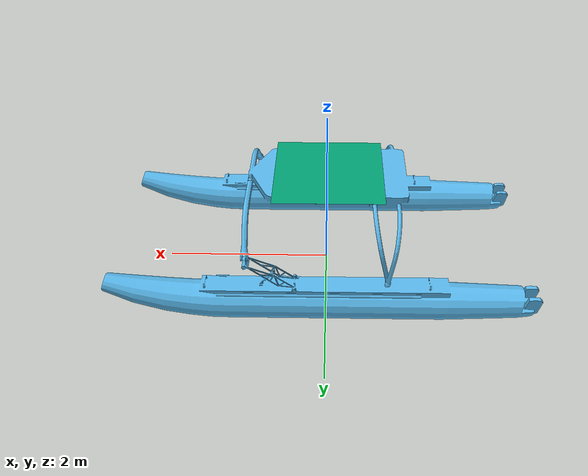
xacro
<?xml version="1.0"?>
<robot xmlns:xacro="http://ros.org/wiki/xacro" name="wam-v">
  <!-- Macro for creating the main collisions as simple shapes. -->
  <xacro:macro name="main_collisions" params="prefix reflect:=1">
    <!-- Main float -->
    <collision name="${prefix}_float">
      <origin xyz="-0.4 ${1.03*reflect} 0.2" rpy="${0*reflect} 1.57 0" />
      <geometry>
        <cylinder length="4" radius="0.2" />
      </geometry>
    </collision>

    <collision name="${prefix}_mid_float">
      <origin xyz="1.85 ${1.03*reflect} 0.3" rpy="${0*reflect} 1.38 0" />
      <geometry>
        <cylinder length="0.5" radius="0.17" />
      </geometry>
    </collision>
    <collision name="${prefix}_front_float">
      <origin xyz="2.3 ${1.03*reflect} 0.4" rpy="${0*reflect} 1.3 0" />
      <geometry>
        <cylinder length="0.45" radius="0.12" />
      </geometry>
    </collision>

    <!-- Front beam -->
    <collision name="front_${prefix}_beam_lower">
      <origin xyz="0.9 ${0.85*reflect} 1" rpy="${0.78*reflect} 0 0" />
      <geometry>
        <cylinder length="0.5" radius="0.04" />
      </geometry>
    </collision>

    <collision name="front_${prefix}_beam_upper">
      <origin xyz="0.9 ${0.6*reflect} 1.18" rpy="${1.35*reflect} 0 0" />
      <geometry>
        <cylinder length="0.2" radius="0.04" />
      </geometry>
    </collision>

    <!-- Mid beam -->
    <collision name="mid_${prefix}_beam_lower">
      <origin xyz="-0.65 ${0.99*reflect} 0.7" rpy="${0.1*reflect} 0.25 0" />
      <geometry>
        <cylinder length="0.45" radius="0.03" />
      </geometry>
    </collision>

    <collision name="mid_${prefix}_beam_medium">
      <origin xyz="-0.57 ${0.87*reflect} 1.05" rpy="${0.75*reflect} 0.25 0" />
      <geometry>
        <cylinder length="0.32" radius="0.03" />
      </geometry>
    </collision>

    <collision name="mid_${prefix}_beam_upper">
      <origin xyz="-0.55 ${0.65*reflect} 1.17" rpy="${1.35*reflect} 0.25 0" />
      <geometry>
        <cylinder length="0.3" radius="0.03" />
      </geometry>
    </collision>

    <!-- Rear beam -->
    <collision name="rear_${prefix}_beam_lower">
      <origin xyz="-0.74 ${1.03*reflect} 0.7" rpy="${0*reflect} -0.15 0" />
      <geometry>
        <cylinder length="0.45" radius="0.03" />
      </geometry>
    </collision>

    <collision name="rear_${prefix}_beam_medium">
      <origin xyz="-0.79 ${0.91*reflect} 1.05" rpy="${0.75*reflect} -0.15 0" />
      <geometry>
        <cylinder length="0.32" radius="0.03" />
      </geometry>
    </collision>

    <collision name="rear_${prefix}_beam_upper">
      <origin xyz="-0.81 ${0.67*reflect} 1.18" rpy="${1.45*reflect} -0.15 0" />
      <geometry>
        <cylinder length="0.3" radius="0.03" />
      </geometry>
    </collision>

    <!-- Joint -->
    <collision name="${prefix}_joint">
      <origin xyz="0.58 ${1.03*reflect} 0.6" rpy="${0*reflect} -0.6 0" />
      <geometry>
        <box size="0.65 0.2 0.1" />
      </geometry>
    </collision>
  </xacro:macro>

  <link name="base_link">
  </link>

  <joint name="dummy_joint" type = "fixed">
    <parent link="base_link"/>
    <child link="dummy_link"/>
  </joint>

  <!-- Basic model of the 16' WAM-V USV -->
  <link name="dummy_link">
    <visual>
      <geometry>
        <mesh filename="package://wamv_description/models/WAM-V-Base/mesh/WAM-V-Base.dae"/>
      </geometry>
    </visual>

    <!-- Left base collisions -->
    <xacro:main_collisions prefix="left" reflect="1" />

    <!-- Right side collisions -->
    <xacro:main_collisions prefix="right" reflect="-1" />

     <!-- Top base -->
    <collision name="top_base">
      <origin xyz="0 -0 1.25" rpy="0 0 0" />
      <geometry>
        <box size="1.85 1 0.1" />
      </geometry>
    </collision>

    <inertial>
      <!-- From WAM-V spec sheet -->
      <mass value="180.0"/>
      <inertia ixx="120.0" ixy="0.0" ixz="0.0" iyy="393" iyz="0.0" izz="446.0"/>
    </inertial>
  </link>

<!-- add mark label -->
  <joint name="mark_joint" type = "fixed">
    <parent link="dummy_link"/>
    <child link="mark_link"/>
  </joint>
  <link name='mark_link'>
    <visual>
      <origin xyz="-0.23 0.35 1.3" rpy="1.57 0 -1.57" />
      <geometry>
        <mesh filename="package://wamv_description/urdf/mesh/mark_label5.DAE"/>
      </geometry>
    </visual>
    <collision name="mark_label">
      <origin xyz="-0.23 0.35 1.3" rpy="1.57 0 -1.57" />
      <geometry>
        <mesh filename="package://wamv_description/urdf/mesh/mark_label5.DAE"/>
      </geometry>
    </collision>
    </link>

</robot>
